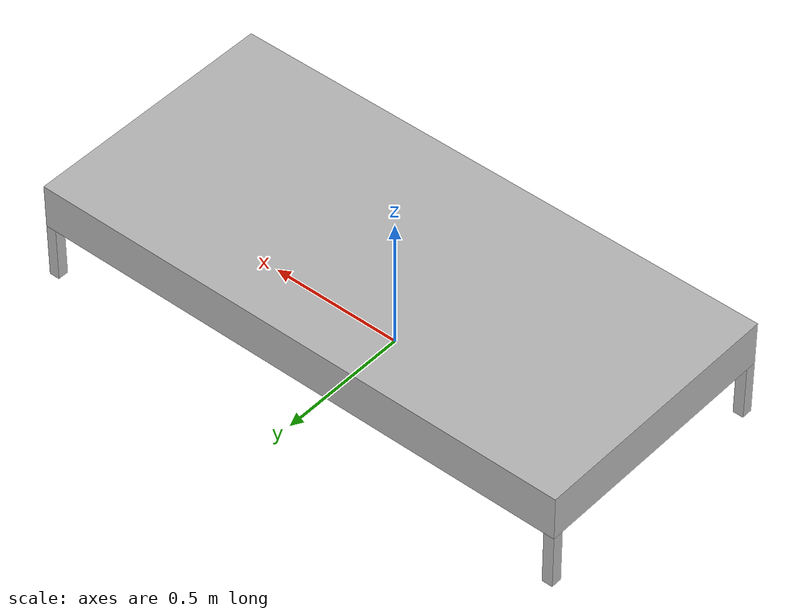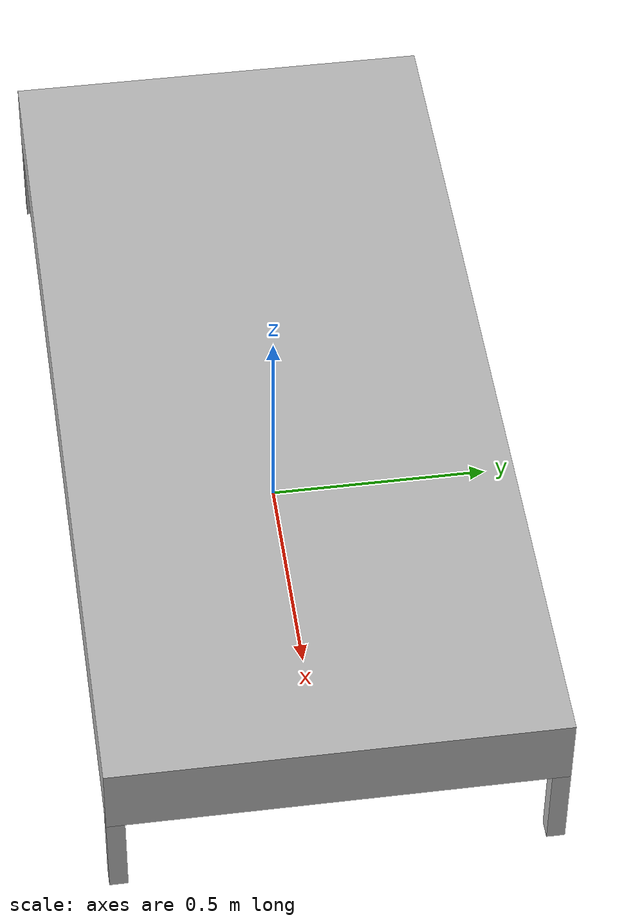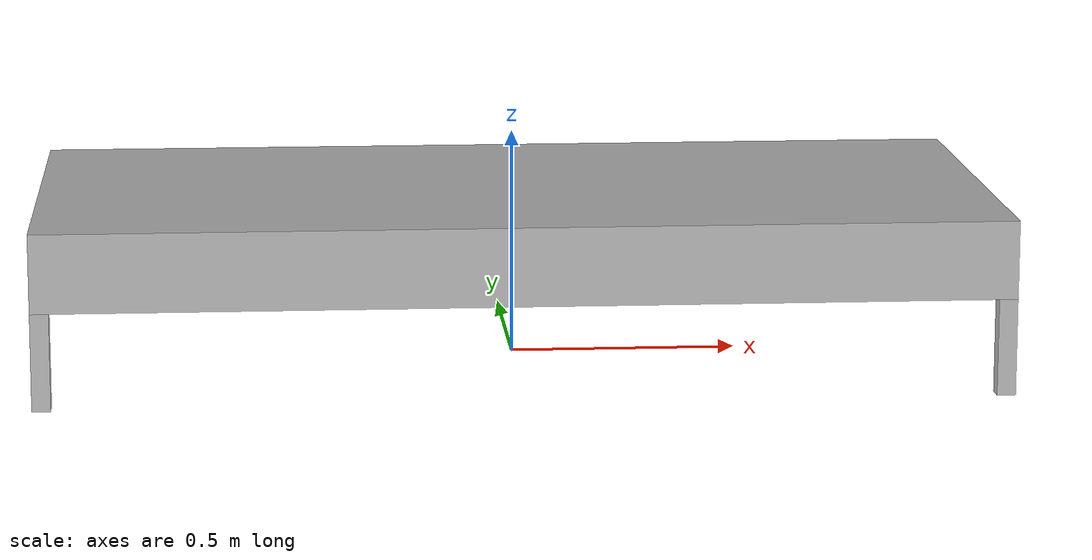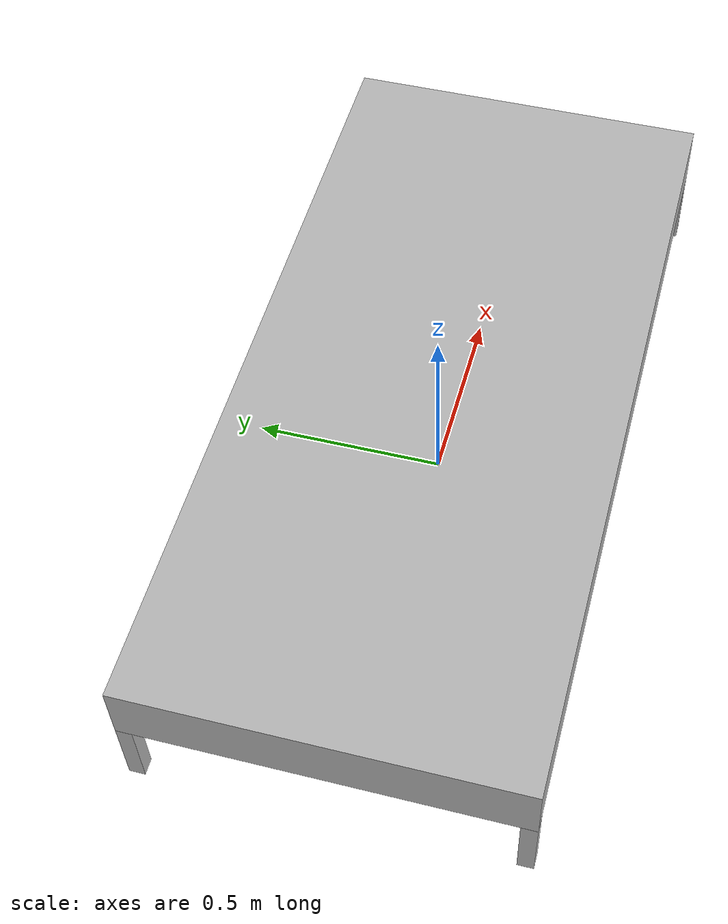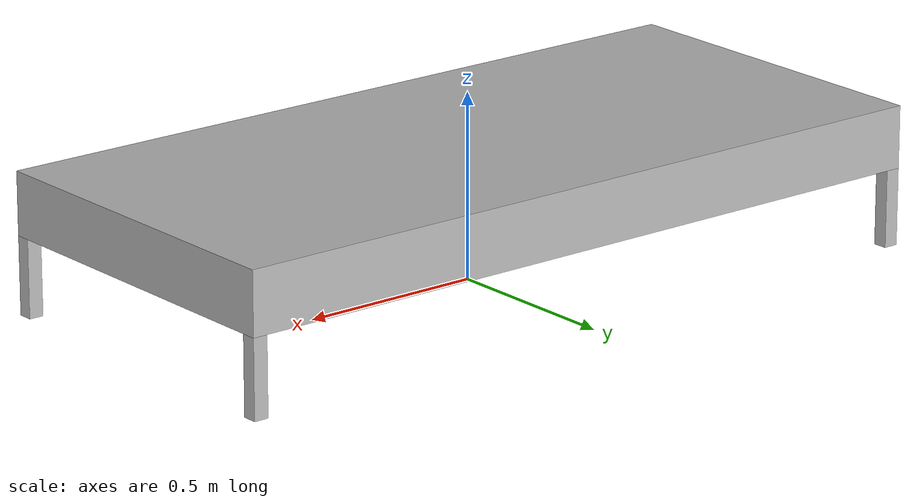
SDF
<?xml version="1.0" ?>
<sdf version="1.6">
  <model name="rwc2022/bed">
    <static>true</static>
    <link name="1_link">
      <collision name="1_col">
        <geometry>
          <box>
            <size>2.09 0.98 0.17</size>
          </box>
        </geometry>
      </collision>
      <visual name="1_vis">
        <geometry>
          <box>
            <size>2.09 0.98 0.17</size>
          </box>
        </geometry>
      </visual>
      <pose>0.0 0.0 0.295 0 0 0</pose>
    </link>
    <link name="2_link">
      <collision name="2_col">
        <geometry>
          <box>
            <size>0.04 0.04 0.21</size>
          </box>
        </geometry>
      </collision>
      <visual name="2_vis">
        <geometry>
          <box>
            <size>0.04 0.04 0.21</size>
          </box>
        </geometry>
      </visual>
      <pose>-1.025 -0.47 0.105 0 0 0</pose>
    </link>
    <link name="3_link">
      <collision name="3_col">
        <geometry>
          <box>
            <size>0.04 0.04 0.21</size>
          </box>
        </geometry>
      </collision>
      <visual name="3_vis">
        <geometry>
          <box>
            <size>0.04 0.04 0.21</size>
          </box>
        </geometry>
      </visual>
      <pose>1.025 -0.47 0.105 0 0 0</pose>
    </link>
    <link name="4_link">
      <collision name="4_col">
        <geometry>
          <box>
            <size>0.04 0.04 0.21</size>
          </box>
        </geometry>
      </collision>
      <visual name="4_vis">
        <geometry>
          <box>
            <size>0.04 0.04 0.21</size>
          </box>
        </geometry>
      </visual>
      <pose>-1.025 0.47 0.105 0 0 0</pose>
    </link>
    <link name="5_link">
      <collision name="5_col">
        <geometry>
          <box>
            <size>0.04 0.04 0.21</size>
          </box>
        </geometry>
      </collision>
      <visual name="5_vis">
        <geometry>
          <box>
            <size>0.04 0.04 0.21</size>
          </box>
        </geometry>
      </visual>
      <pose>1.025 0.47 0.105 0 0 0</pose>
    </link>
    <link name="on_top_of">
      <virtual_volume name="on_top_of_vv">
        <geometry>
          <box>
            <size>2.07 0.92 0.25</size>
          </box>
        </geometry>
        <pose>0.0 0.0 0.525 0 0 0</pose>
      </virtual_volume>
    </link>
    <link name="in_front_of">
      <virtual_volume name="in_front_of_vv">
        <geometry>
          <box>
            <size>0.2 0.39 0.01</size>
          </box>
        </geometry>
        <pose>1.545 0.1 0.005 0 0 0</pose>
      </virtual_volume>
    </link>
  </model>
</sdf>
